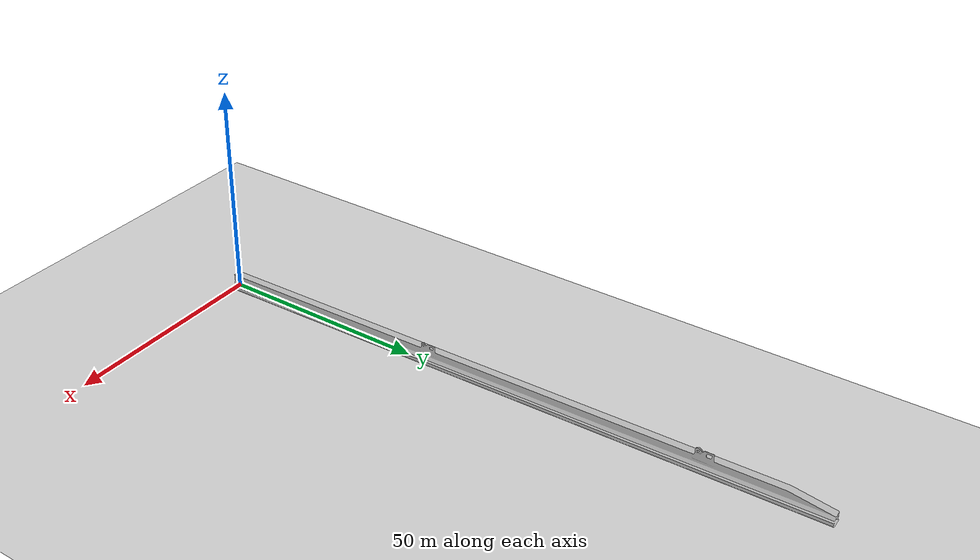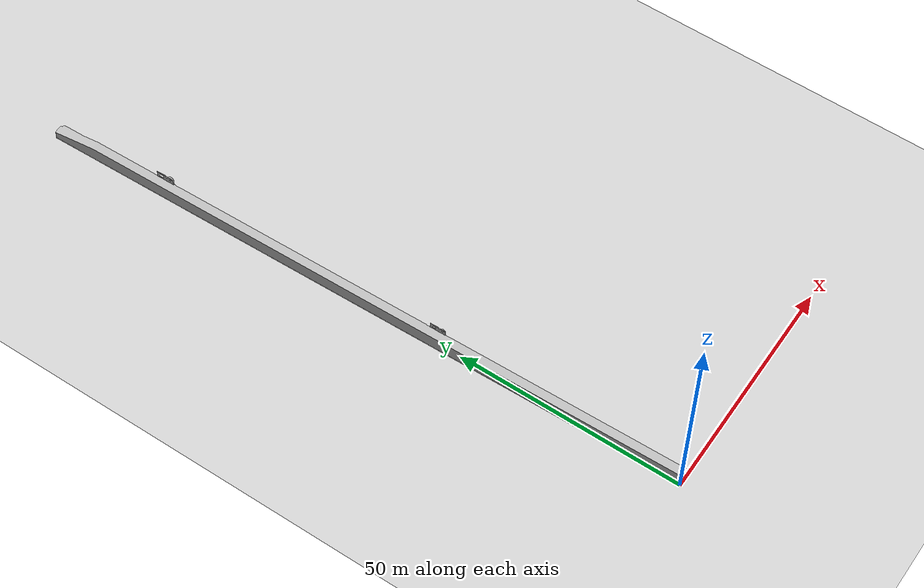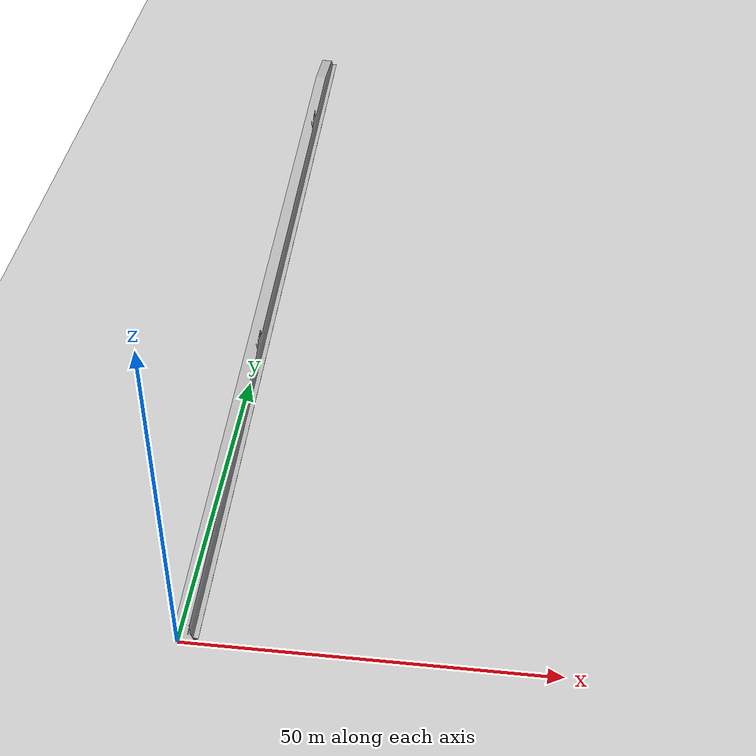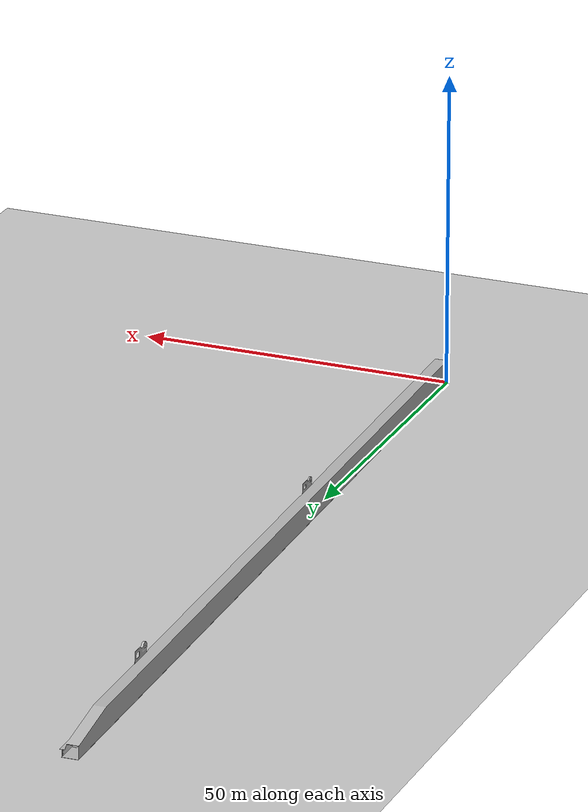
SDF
<sdf version="1.6">
 <world name="default">
  <light name="sun" type="directional">
   <pose>0 0 10 0 -0 0</pose>
   <diffuse>0.8 0.8 0.8 1</diffuse>
   <specular>0.2 0.2 0.2 1</specular>
   <attenuation>
    <range>1000</range>
    <constant>0.9</constant>
    <linear>0.01</linear>
    <quadratic>0.001</quadratic>
   </attenuation>
   <direction>-0.5 0.1 -0.9</direction>
  </light>
  <model name="ground_plane">
   <static>1</static>
   <link name="link">
    <collision name="collision">
     <geometry><plane><normal>0 0 1</normal><size>100 100</size></plane></geometry>
     <surface>
      <contact><collide_bitmask>65535</collide_bitmask></contact>
      <friction><ode><mu>100</mu><mu2>50</mu2></ode></friction>
     </surface>
    </collision>
    <visual name="visual">
     <cast_shadows>0</cast_shadows>
     <geometry><plane><normal>0 0 1</normal><size>100 100</size></plane></geometry>
     <material>
      <script><uri>file://media/materials/scripts/gazebo.material</uri><name>Gazebo/Grey</name></script>
     </material>
    </visual>
   </link>
  </model>
  <gravity>0 0 -9.8</gravity>
  <magnetic_field>6e-06 2.3e-05 -4.2e-05</magnetic_field>
  <atmosphere type="adiabatic"/>
  <physics name="default_physics" default="0" type="ode">
   <max_step_size>0.001</max_step_size>
   <real_time_factor>1</real_time_factor>
   <real_time_update_rate>1000</real_time_update_rate>
  </physics>
  <scene><ambient>0.4 0.4 0.4 1</ambient><background>0.7 0.7 0.7 1</background><shadows>1</shadows></scene>
  <audio><device>default</device></audio>
  <spherical_coordinates>
   <surface_model>EARTH_WGS84</surface_model>
   <latitude_deg>0</latitude_deg>
   <longitude_deg>0</longitude_deg>
   <elevation>0</elevation>
   <heading_deg>0</heading_deg>
  </spherical_coordinates>
  <model name="dam">
   <static>1</static>
   <link name="xiangliang">
    <inertial>
     <mass>73400.1</mass>
     <inertia>
      <ixx>3.2641e+06</ixx>
      <ixy>-529.44</ixy>
      <ixz>-930.54</ixz>
      <iyy>3.2616e+06</iyy>
      <iyz>-970</iyz>
      <izz>5341</izz>
     </inertia>
    </inertial>
    <collision name="xiangliang_collision">
     <geometry>
      <mesh>
       <scale>1 1 1</scale>
       <uri>/home/sunkejia/MyLib/Project_xiangliang/src/xiangliang/meshes/xiangliangre_x0.002.STL</uri>
      </mesh>
     </geometry>
    </collision>
    <visual name="xiangliang_visual">
     <geometry>
      <mesh>
       <scale>1 1 1</scale>
       <uri>/home/sunkejia/MyLib/Project_xiangliang/src/xiangliang/meshes/xiangliangre_x0.002.STL</uri>
      </mesh>
     </geometry>
    </visual>
   </link>
   <pose>-0.070976 0.004631 -10 0.000515 -8.2e-05 0.022062</pose>
  </model>
 </world>
</sdf>
